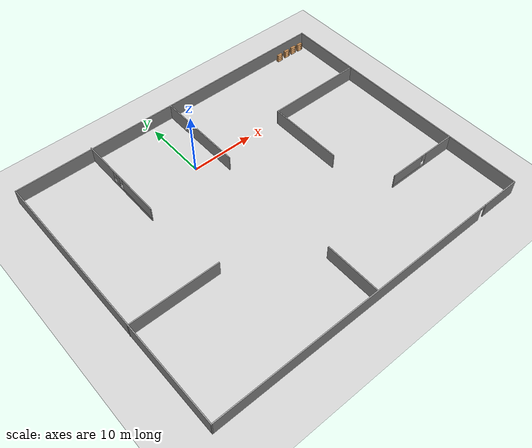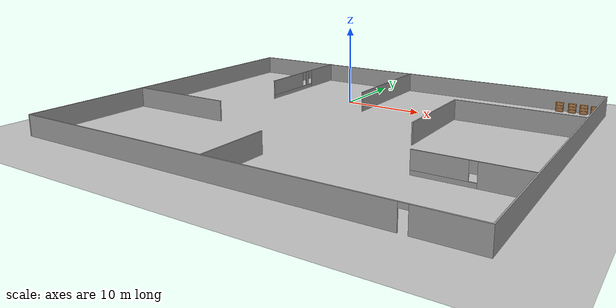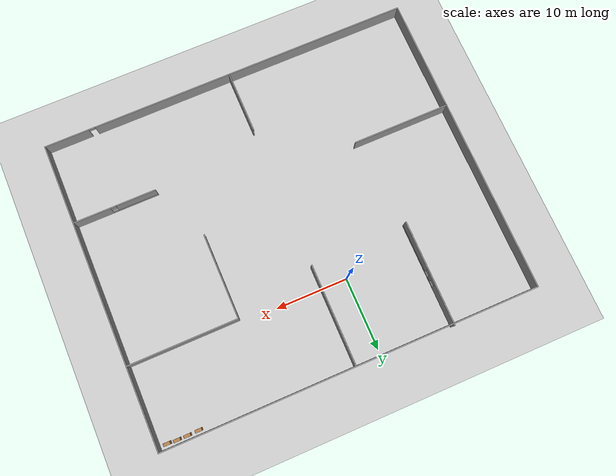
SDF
<sdf version="1.7">
 <world name="default">
  <light name="sun" type="directional">
   <pose>0 0 10 0 -0 0</pose>
   <diffuse>0.8 0.8 0.8 1</diffuse>
   <specular>0.2 0.2 0.2 1</specular>
   <attenuation>
    <range>1000</range>
    <constant>0.9</constant>
    <linear>0.01</linear>
    <quadratic>0.001</quadratic>
   </attenuation>
   <direction>-0.5 0.1 -0.9</direction>
   <spot><inner_angle>0</inner_angle><outer_angle>0</outer_angle><falloff>0</falloff></spot>
  </light>
  <model name="ground_plane">
   <static>1</static>
   <link name="link">
    <collision name="collision">
     <geometry><plane><normal>0 0 1</normal><size>100 100</size></plane></geometry>
     <surface><friction><ode><mu>100</mu><mu2>50</mu2></ode></friction></surface>
    </collision>
    <visual name="visual">
     <cast_shadows>0</cast_shadows>
     <geometry><plane><normal>0 0 1</normal><size>100 100</size></plane></geometry>
     <material>
      <script><uri>file://media/materials/scripts/gazebo.material</uri><name>Gazebo/Grey</name></script>
     </material>
    </visual>
   </link>
  </model>
  <gravity>0 0 -9.8</gravity>
  <magnetic_field>6e-06 2.3e-05 -4.2e-05</magnetic_field>
  <atmosphere type="adiabatic"/>
  <physics type="ode">
   <max_step_size>0.001</max_step_size>
   <real_time_factor>1</real_time_factor>
   <real_time_update_rate>1000</real_time_update_rate>
  </physics>
  <scene><ambient>0.4 0.4 0.4 1</ambient><background>0.7 0.7 0.7 1</background><shadows>1</shadows></scene>
  <audio><device>default</device></audio>
  <spherical_coordinates>
   <surface_model>EARTH_WGS84</surface_model>
   <latitude_deg>0</latitude_deg>
   <longitude_deg>0</longitude_deg>
   <elevation>0</elevation>
   <heading_deg>0</heading_deg>
  </spherical_coordinates>
  <model name="maze_wall">
   <pose>4.14739 -10.5175 0 0 -0 0</pose>
   <link name="Wall_10">
    <collision name="Wall_10_Collision">
     <geometry><box><size>43 0.15 2.5</size></box></geometry>
     <pose>0 0 1.25 0 -0 0</pose>
    </collision>
    <visual name="Wall_10_Visual">
     <pose>0 0 1.25 0 -0 0</pose>
     <geometry><box><size>43 0.15 2.5</size></box></geometry>
     <material>
      <script><uri>file://media/materials/scripts/gazebo.material</uri><name>Gazebo/Grey</name></script>
      <ambient>1 1 1 1</ambient>
     </material>
     <meta><layer>0</layer></meta>
    </visual>
    <pose>-26.1581 -0.11694 0 0 -0 1.5708</pose>
   </link>
   <link name="Wall_12">
    <pose>-14.1196 14.2419 0 0 -0 -1.5708</pose>
    <visual name="Wall_12_Visual_0">
     <pose>-4.51361 0 1.25 0 -0 0</pose>
     <geometry><box><size>5.72278 0.15 2.5</size></box></geometry>
     <material>
      <script><uri>file://media/materials/scripts/gazebo.material</uri><name>Gazebo/Grey</name></script>
      <ambient>1 1 1 1</ambient>
     </material>
     <meta><layer>0</layer></meta>
    </visual>
    <collision name="Wall_12_Collision_0">
     <geometry><box><size>5.72278 0.15 2.5</size></box></geometry>
     <pose>-4.51361 0 1.25 0 -0 0</pose>
    </collision>
    <visual name="Wall_12_Visual_1">
     <pose>2.86139 0 0.25 0 -0 0</pose>
     <geometry><box><size>9.02722 0.15 0.5</size></box></geometry>
     <material>
      <script><uri>file://media/materials/scripts/gazebo.material</uri><name>Gazebo/Grey</name></script>
      <ambient>1 1 1 1</ambient>
     </material>
     <meta><layer>0</layer></meta>
    </visual>
    <collision name="Wall_12_Collision_1">
     <geometry><box><size>9.02722 0.15 0.5</size></box></geometry>
     <pose>2.86139 0 0.25 0 -0 0</pose>
    </collision>
    <visual name="Wall_12_Visual_2">
     <pose>-0.540629 0 1.5 0 -0 0</pose>
     <geometry><box><size>0.623177 0.15 2</size></box></geometry>
     <material>
      <script><uri>file://media/materials/scripts/gazebo.material</uri><name>Gazebo/Grey</name></script>
      <ambient>1 1 1 1</ambient>
     </material>
     <meta><layer>0</layer></meta>
    </visual>
    <collision name="Wall_12_Collision_2">
     <geometry><box><size>0.623177 0.15 2</size></box></geometry>
     <pose>-0.540629 0 1.5 0 -0 0</pose>
    </collision>
    <visual name="Wall_12_Visual_3">
     <pose>3.97298 0 1.5 0 -0 0</pose>
     <geometry><box><size>6.80404 0.15 2</size></box></geometry>
     <material>
      <script><uri>file://media/materials/scripts/gazebo.material</uri><name>Gazebo/Grey</name></script>
      <ambient>1 1 1 1</ambient>
     </material>
     <meta><layer>0</layer></meta>
    </visual>
    <collision name="Wall_12_Collision_3">
     <geometry><box><size>6.80404 0.15 2</size></box></geometry>
     <pose>3.97298 0 1.5 0 -0 0</pose>
    </collision>
    <visual name="Wall_12_Visual_4">
     <pose>-1.25222 0 1.9 0 -0 0</pose>
     <geometry><box><size>0.8 0.15 1.2</size></box></geometry>
     <material>
      <script><uri>file://media/materials/scripts/gazebo.material</uri><name>Gazebo/Grey</name></script>
      <ambient>1 1 1 1</ambient>
     </material>
     <meta><layer>0</layer></meta>
    </visual>
    <collision name="Wall_12_Collision_4">
     <geometry><box><size>0.8 0.15 1.2</size></box></geometry>
     <pose>-1.25222 0 1.9 0 -0 0</pose>
    </collision>
    <visual name="Wall_12_Visual_5">
     <pose>0.17096 0 1.9 0 -0 0</pose>
     <geometry><box><size>0.8 0.15 1.2</size></box></geometry>
     <material>
      <script><uri>file://media/materials/scripts/gazebo.material</uri><name>Gazebo/Grey</name></script>
      <ambient>1 1 1 1</ambient>
     </material>
     <meta><layer>0</layer></meta>
    </visual>
    <collision name="Wall_12_Collision_5">
     <geometry><box><size>0.8 0.15 1.2</size></box></geometry>
     <pose>0.17096 0 1.9 0 -0 0</pose>
    </collision>
   </link>
   <link name="Wall_14">
    <collision name="Wall_14_Collision">
     <geometry><box><size>15.25 0.15 2.5</size></box></geometry>
     <pose>0 0 1.25 0 -0 0</pose>
    </collision>
    <visual name="Wall_14_Visual">
     <pose>0 0 1.25 0 -0 0</pose>
     <geometry><box><size>15.25 0.15 2.5</size></box></geometry>
     <material>
      <script><uri>file://media/materials/scripts/gazebo.material</uri><name>Gazebo/Grey</name></script>
      <ambient>1 1 1 1</ambient>
     </material>
     <meta><layer>0</layer></meta>
    </visual>
    <pose>18.4887 9.94377 0 0 -0 3.14159</pose>
   </link>
   <link name="Wall_15">
    <collision name="Wall_15_Collision">
     <geometry><box><size>12 0.15 2.5</size></box></geometry>
     <pose>0 0 1.25 0 -0 0</pose>
    </collision>
    <visual name="Wall_15_Visual">
     <pose>0 0 1.25 0 -0 0</pose>
     <geometry><box><size>12 0.15 2.5</size></box></geometry>
     <material>
      <script><uri>file://media/materials/scripts/gazebo.material</uri><name>Gazebo/Grey</name></script>
      <ambient>1 1 1 1</ambient>
     </material>
     <meta><layer>0</layer></meta>
    </visual>
    <pose>10.9387 4.01877 0 0 -0 -1.5708</pose>
   </link>
   <link name="Wall_17">
    <collision name="Wall_17_Collision">
     <geometry><box><size>13.75 0.15 2.5</size></box></geometry>
     <pose>0 0 1.25 0 -0 0</pose>
    </collision>
    <visual name="Wall_17_Visual">
     <pose>0 0 1.25 0 -0 0</pose>
     <geometry><box><size>13.75 0.15 2.5</size></box></geometry>
     <material>
      <script><uri>file://media/materials/scripts/gazebo.material</uri><name>Gazebo/Grey</name></script>
      <ambient>1 1 1 1</ambient>
     </material>
     <meta><layer>0</layer></meta>
    </visual>
    <pose>-19.3919 -5.71118 0 0 -0 0</pose>
   </link>
   <link name="Wall_19">
    <collision name="Wall_19_Collision">
     <geometry><box><size>8.75 0.15 2.5</size></box></geometry>
     <pose>0 0 1.25 0 -0 0</pose>
    </collision>
    <visual name="Wall_19_Visual">
     <pose>0 0 1.25 0 -0 0</pose>
     <geometry><box><size>8.75 0.15 2.5</size></box></geometry>
     <material>
      <script><uri>file://media/materials/scripts/gazebo.material</uri><name>Gazebo/Grey</name></script>
      <ambient>1 1 1 1</ambient>
     </material>
     <meta><layer>0</layer></meta>
    </visual>
    <pose>-0.574667 -17.2084 0 0 -0 1.5708</pose>
   </link>
   <link name="Wall_21">
    <pose>20.3637 -10.123 0 0 -0 3.14159</pose>
    <visual name="Wall_21_Visual_0">
     <pose>-3.20846 0 1.25 0 -0 0</pose>
     <geometry><box><size>5.08307 0.15 2.5</size></box></geometry>
     <material>
      <script><uri>file://media/materials/scripts/gazebo.material</uri><name>Gazebo/Grey</name></script>
      <ambient>1 1 1 1</ambient>
     </material>
     <meta><layer>0</layer></meta>
    </visual>
    <collision name="Wall_21_Collision_0">
     <geometry><box><size>5.08307 0.15 2.5</size></box></geometry>
     <pose>-3.20846 0 1.25 0 -0 0</pose>
    </collision>
    <visual name="Wall_21_Visual_1">
     <pose>2.54154 0 0.25 0 -0 0</pose>
     <geometry><box><size>6.41693 0.15 0.5</size></box></geometry>
     <material>
      <script><uri>file://media/materials/scripts/gazebo.material</uri><name>Gazebo/Grey</name></script>
      <ambient>1 1 1 1</ambient>
     </material>
     <meta><layer>0</layer></meta>
    </visual>
    <collision name="Wall_21_Collision_1">
     <geometry><box><size>6.41693 0.15 0.5</size></box></geometry>
     <pose>2.54154 0 0.25 0 -0 0</pose>
    </collision>
    <visual name="Wall_21_Visual_2">
     <pose>2.94154 0 1.5 0 -0 0</pose>
     <geometry><box><size>5.61693 0.15 2</size></box></geometry>
     <material>
      <script><uri>file://media/materials/scripts/gazebo.material</uri><name>Gazebo/Grey</name></script>
      <ambient>1 1 1 1</ambient>
     </material>
     <meta><layer>0</layer></meta>
    </visual>
    <collision name="Wall_21_Collision_2">
     <geometry><box><size>5.61693 0.15 2</size></box></geometry>
     <pose>2.94154 0 1.5 0 -0 0</pose>
    </collision>
    <visual name="Wall_21_Visual_3">
     <pose>-0.266928 0 1.9 0 -0 0</pose>
     <geometry><box><size>0.8 0.15 1.2</size></box></geometry>
     <material>
      <script><uri>file://media/materials/scripts/gazebo.material</uri><name>Gazebo/Grey</name></script>
      <ambient>1 1 1 1</ambient>
     </material>
     <meta><layer>0</layer></meta>
    </visual>
    <collision name="Wall_21_Collision_3">
     <geometry><box><size>0.8 0.15 1.2</size></box></geometry>
     <pose>-0.266928 0 1.9 0 -0 0</pose>
    </collision>
   </link>
   <link name="Wall_23">
    <collision name="Wall_23_Collision">
     <geometry><box><size>14 0.15 2.5</size></box></geometry>
     <pose>0 0 1.25 0 -0 0</pose>
    </collision>
    <visual name="Wall_23_Visual">
     <pose>0 0 1.25 0 -0 0</pose>
     <geometry><box><size>14 0.15 2.5</size></box></geometry>
     <material>
      <script><uri>file://media/materials/scripts/gazebo.material</uri><name>Gazebo/Grey</name></script>
      <ambient>1 1 1 1</ambient>
     </material>
     <meta><layer>0</layer></meta>
    </visual>
    <pose>-0.43235 14.2619 0 0 -0 -1.5708</pose>
   </link>
   <link name="Wall_7">
    <collision name="Wall_7_Collision">
     <geometry><box><size>52.5 0.15 2.5</size></box></geometry>
     <pose>0 0 1.25 0 -0 0</pose>
    </collision>
    <visual name="Wall_7_Visual">
     <pose>0 0 1.25 0 -0 0</pose>
     <geometry><box><size>52.5 0.15 2.5</size></box></geometry>
     <material>
      <script><uri>file://media/materials/scripts/gazebo.material</uri><name>Gazebo/Grey</name></script>
      <ambient>1 1 1 1</ambient>
     </material>
     <meta><layer>0</layer></meta>
    </visual>
    <pose>0.016854 21.3081 0 0 -0 0</pose>
   </link>
   <link name="Wall_8">
    <collision name="Wall_8_Collision">
     <geometry><box><size>43 0.15 2.5</size></box></geometry>
     <pose>0 0 1.25 0 -0 0</pose>
    </collision>
    <visual name="Wall_8_Visual">
     <pose>0 0 1.25 0 -0 0</pose>
     <geometry><box><size>43 0.15 2.5</size></box></geometry>
     <material>
      <script><uri>file://media/materials/scripts/gazebo.material</uri><name>Gazebo/Grey</name></script>
      <ambient>1 1 1 1</ambient>
     </material>
     <meta><layer>0</layer></meta>
    </visual>
    <pose>26.1919 -0.11694 0 0 -0 -1.5708</pose>
   </link>
   <link name="Wall_9">
    <pose>0.016854 -21.5419 0 0 -0 3.14159</pose>
    <visual name="Wall_9_Visual_0">
     <pose>-23.0876 0 1.25 0 -0 0</pose>
     <geometry><box><size>6.32472 0.15 2.5</size></box></geometry>
     <material>
      <script><uri>file://media/materials/scripts/gazebo.material</uri><name>Gazebo/Grey</name></script>
      <ambient>1 1 1 1</ambient>
     </material>
     <meta><layer>0</layer></meta>
    </visual>
    <collision name="Wall_9_Collision_0">
     <geometry><box><size>6.32472 0.15 2.5</size></box></geometry>
     <pose>-23.0876 0 1.25 0 -0 0</pose>
    </collision>
    <visual name="Wall_9_Visual_1">
     <pose>3.61236 0 1.25 0 -0 0</pose>
     <geometry><box><size>45.2753 0.15 2.5</size></box></geometry>
     <material>
      <script><uri>file://media/materials/scripts/gazebo.material</uri><name>Gazebo/Grey</name></script>
      <ambient>1 1 1 1</ambient>
     </material>
     <meta><layer>0</layer></meta>
    </visual>
    <collision name="Wall_9_Collision_1">
     <geometry><box><size>45.2753 0.15 2.5</size></box></geometry>
     <pose>3.61236 0 1.25 0 -0 0</pose>
    </collision>
    <visual name="Wall_9_Visual_2">
     <pose>-19.4753 0 2.25 0 -0 0</pose>
     <geometry><box><size>0.9 0.15 0.5</size></box></geometry>
     <material>
      <script><uri>file://media/materials/scripts/gazebo.material</uri><name>Gazebo/Grey</name></script>
      <ambient>1 1 1 1</ambient>
     </material>
     <meta><layer>0</layer></meta>
    </visual>
    <collision name="Wall_9_Collision_2">
     <geometry><box><size>0.9 0.15 0.5</size></box></geometry>
     <pose>-19.4753 0 2.25 0 -0 0</pose>
    </collision>
   </link>
   <static>1</static>
  </model>
  <model name="bookshelf">
   <static>1</static>
   <link name="link">
    <inertial><mass>1</mass></inertial>
    <collision name="back">
     <pose>0 0.005 0.6 0 -0 0</pose>
     <geometry><box><size>0.9 0.01 1.2</size></box></geometry>
    </collision>
    <visual name="visual1">
     <pose>0 0.005 0.6 0 -0 0</pose>
     <geometry><box><size>0.9 0.01 1.2</size></box></geometry>
     <material>
      <script><uri>file://media/materials/scripts/gazebo.material</uri><name>Gazebo/Wood</name></script>
     </material>
    </visual>
    <collision name="left_side">
     <pose>0.45 -0.195 0.6 0 -0 0</pose>
     <geometry><box><size>0.02 0.4 1.2</size></box></geometry>
    </collision>
    <visual name="visual2">
     <pose>0.45 -0.195 0.6 0 -0 0</pose>
     <geometry><box><size>0.02 0.4 1.2</size></box></geometry>
     <material>
      <script><uri>file://media/materials/scripts/gazebo.material</uri><name>Gazebo/Wood</name></script>
     </material>
    </visual>
    <collision name="right_side">
     <pose>-0.45 -0.195 0.6 0 -0 0</pose>
     <geometry><box><size>0.02 0.4 1.2</size></box></geometry>
    </collision>
    <visual name="visual3">
     <pose>-0.45 -0.195 0.6 0 -0 0</pose>
     <geometry><box><size>0.02 0.4 1.2</size></box></geometry>
     <material>
      <script><uri>file://media/materials/scripts/gazebo.material</uri><name>Gazebo/Wood</name></script>
     </material>
    </visual>
    <collision name="bottom">
     <pose>0 -0.195 0.03 0 -0 0</pose>
     <geometry><box><size>0.88 0.4 0.06</size></box></geometry>
    </collision>
    <visual name="visual4">
     <pose>0 -0.195 0.03 0 -0 0</pose>
     <geometry><box><size>0.88 0.4 0.06</size></box></geometry>
     <material>
      <script><uri>file://media/materials/scripts/gazebo.material</uri><name>Gazebo/Wood</name></script>
     </material>
    </visual>
    <collision name="top">
     <pose>0 -0.195 1.19 0 -0 0</pose>
     <geometry><box><size>0.88 0.4 0.02</size></box></geometry>
    </collision>
    <visual name="visual5">
     <pose>0 -0.195 1.19 0 -0 0</pose>
     <geometry><box><size>0.88 0.4 0.02</size></box></geometry>
     <material>
      <script><uri>file://media/materials/scripts/gazebo.material</uri><name>Gazebo/Wood</name></script>
     </material>
    </visual>
    <collision name="low_shelf">
     <pose>0 -0.195 0.43 0 -0 0</pose>
     <geometry><box><size>0.88 0.4 0.02</size></box></geometry>
    </collision>
    <visual name="visual6">
     <pose>0 -0.195 0.43 0 -0 0</pose>
     <geometry><box><size>0.88 0.4 0.02</size></box></geometry>
     <material>
      <script><uri>file://media/materials/scripts/gazebo.material</uri><name>Gazebo/Wood</name></script>
     </material>
    </visual>
    <collision name="high_shelf">
     <pose>0 -0.195 0.8 0 -0 0</pose>
     <geometry><box><size>0.88 0.4 0.02</size></box></geometry>
    </collision>
    <visual name="visual7">
     <pose>0 -0.195 0.8 0 -0 0</pose>
     <geometry><box><size>0.88 0.4 0.02</size></box></geometry>
     <material>
      <script><uri>file://media/materials/scripts/gazebo.material</uri><name>Gazebo/Wood</name></script>
     </material>
    </visual>
   </link>
   <pose>29.2407 10.3517 0 0 -0 0</pose>
  </model>
  <model name="bookshelf_0">
   <static>1</static>
   <link name="link">
    <inertial><mass>1</mass></inertial>
    <collision name="back">
     <pose>0 0.005 0.6 0 -0 0</pose>
     <geometry><box><size>0.9 0.01 1.2</size></box></geometry>
    </collision>
    <visual name="visual1">
     <pose>0 0.005 0.6 0 -0 0</pose>
     <geometry><box><size>0.9 0.01 1.2</size></box></geometry>
     <material>
      <script><uri>file://media/materials/scripts/gazebo.material</uri><name>Gazebo/Wood</name></script>
     </material>
    </visual>
    <collision name="left_side">
     <pose>0.45 -0.195 0.6 0 -0 0</pose>
     <geometry><box><size>0.02 0.4 1.2</size></box></geometry>
    </collision>
    <visual name="visual2">
     <pose>0.45 -0.195 0.6 0 -0 0</pose>
     <geometry><box><size>0.02 0.4 1.2</size></box></geometry>
     <material>
      <script><uri>file://media/materials/scripts/gazebo.material</uri><name>Gazebo/Wood</name></script>
     </material>
    </visual>
    <collision name="right_side">
     <pose>-0.45 -0.195 0.6 0 -0 0</pose>
     <geometry><box><size>0.02 0.4 1.2</size></box></geometry>
    </collision>
    <visual name="visual3">
     <pose>-0.45 -0.195 0.6 0 -0 0</pose>
     <geometry><box><size>0.02 0.4 1.2</size></box></geometry>
     <material>
      <script><uri>file://media/materials/scripts/gazebo.material</uri><name>Gazebo/Wood</name></script>
     </material>
    </visual>
    <collision name="bottom">
     <pose>0 -0.195 0.03 0 -0 0</pose>
     <geometry><box><size>0.88 0.4 0.06</size></box></geometry>
    </collision>
    <visual name="visual4">
     <pose>0 -0.195 0.03 0 -0 0</pose>
     <geometry><box><size>0.88 0.4 0.06</size></box></geometry>
     <material>
      <script><uri>file://media/materials/scripts/gazebo.material</uri><name>Gazebo/Wood</name></script>
     </material>
    </visual>
    <collision name="top">
     <pose>0 -0.195 1.19 0 -0 0</pose>
     <geometry><box><size>0.88 0.4 0.02</size></box></geometry>
    </collision>
    <visual name="visual5">
     <pose>0 -0.195 1.19 0 -0 0</pose>
     <geometry><box><size>0.88 0.4 0.02</size></box></geometry>
     <material>
      <script><uri>file://media/materials/scripts/gazebo.material</uri><name>Gazebo/Wood</name></script>
     </material>
    </visual>
    <collision name="low_shelf">
     <pose>0 -0.195 0.43 0 -0 0</pose>
     <geometry><box><size>0.88 0.4 0.02</size></box></geometry>
    </collision>
    <visual name="visual6">
     <pose>0 -0.195 0.43 0 -0 0</pose>
     <geometry><box><size>0.88 0.4 0.02</size></box></geometry>
     <material>
      <script><uri>file://media/materials/scripts/gazebo.material</uri><name>Gazebo/Wood</name></script>
     </material>
    </visual>
    <collision name="high_shelf">
     <pose>0 -0.195 0.8 0 -0 0</pose>
     <geometry><box><size>0.88 0.4 0.02</size></box></geometry>
    </collision>
    <visual name="visual7">
     <pose>0 -0.195 0.8 0 -0 0</pose>
     <geometry><box><size>0.88 0.4 0.02</size></box></geometry>
     <material>
      <script><uri>file://media/materials/scripts/gazebo.material</uri><name>Gazebo/Wood</name></script>
     </material>
    </visual>
   </link>
   <pose>27.9232 10.4359 0 0 -0 0</pose>
  </model>
  <model name="bookshelf_1">
   <static>1</static>
   <link name="link">
    <inertial><mass>1</mass></inertial>
    <collision name="back">
     <pose>0 0.005 0.6 0 -0 0</pose>
     <geometry><box><size>0.9 0.01 1.2</size></box></geometry>
    </collision>
    <visual name="visual1">
     <pose>0 0.005 0.6 0 -0 0</pose>
     <geometry><box><size>0.9 0.01 1.2</size></box></geometry>
     <material>
      <script><uri>file://media/materials/scripts/gazebo.material</uri><name>Gazebo/Wood</name></script>
     </material>
    </visual>
    <collision name="left_side">
     <pose>0.45 -0.195 0.6 0 -0 0</pose>
     <geometry><box><size>0.02 0.4 1.2</size></box></geometry>
    </collision>
    <visual name="visual2">
     <pose>0.45 -0.195 0.6 0 -0 0</pose>
     <geometry><box><size>0.02 0.4 1.2</size></box></geometry>
     <material>
      <script><uri>file://media/materials/scripts/gazebo.material</uri><name>Gazebo/Wood</name></script>
     </material>
    </visual>
    <collision name="right_side">
     <pose>-0.45 -0.195 0.6 0 -0 0</pose>
     <geometry><box><size>0.02 0.4 1.2</size></box></geometry>
    </collision>
    <visual name="visual3">
     <pose>-0.45 -0.195 0.6 0 -0 0</pose>
     <geometry><box><size>0.02 0.4 1.2</size></box></geometry>
     <material>
      <script><uri>file://media/materials/scripts/gazebo.material</uri><name>Gazebo/Wood</name></script>
     </material>
    </visual>
    <collision name="bottom">
     <pose>0 -0.195 0.03 0 -0 0</pose>
     <geometry><box><size>0.88 0.4 0.06</size></box></geometry>
    </collision>
    <visual name="visual4">
     <pose>0 -0.195 0.03 0 -0 0</pose>
     <geometry><box><size>0.88 0.4 0.06</size></box></geometry>
     <material>
      <script><uri>file://media/materials/scripts/gazebo.material</uri><name>Gazebo/Wood</name></script>
     </material>
    </visual>
    <collision name="top">
     <pose>0 -0.195 1.19 0 -0 0</pose>
     <geometry><box><size>0.88 0.4 0.02</size></box></geometry>
    </collision>
    <visual name="visual5">
     <pose>0 -0.195 1.19 0 -0 0</pose>
     <geometry><box><size>0.88 0.4 0.02</size></box></geometry>
     <material>
      <script><uri>file://media/materials/scripts/gazebo.material</uri><name>Gazebo/Wood</name></script>
     </material>
    </visual>
    <collision name="low_shelf">
     <pose>0 -0.195 0.43 0 -0 0</pose>
     <geometry><box><size>0.88 0.4 0.02</size></box></geometry>
    </collision>
    <visual name="visual6">
     <pose>0 -0.195 0.43 0 -0 0</pose>
     <geometry><box><size>0.88 0.4 0.02</size></box></geometry>
     <material>
      <script><uri>file://media/materials/scripts/gazebo.material</uri><name>Gazebo/Wood</name></script>
     </material>
    </visual>
    <collision name="high_shelf">
     <pose>0 -0.195 0.8 0 -0 0</pose>
     <geometry><box><size>0.88 0.4 0.02</size></box></geometry>
    </collision>
    <visual name="visual7">
     <pose>0 -0.195 0.8 0 -0 0</pose>
     <geometry><box><size>0.88 0.4 0.02</size></box></geometry>
     <material>
      <script><uri>file://media/materials/scripts/gazebo.material</uri><name>Gazebo/Wood</name></script>
     </material>
    </visual>
   </link>
   <pose>26.5377 10.4462 0 0 -0 0</pose>
  </model>
  <model name="bookshelf_2">
   <static>1</static>
   <link name="link">
    <inertial><mass>1</mass></inertial>
    <collision name="back">
     <pose>0 0.005 0.6 0 -0 0</pose>
     <geometry><box><size>0.9 0.01 1.2</size></box></geometry>
    </collision>
    <visual name="visual1">
     <pose>0 0.005 0.6 0 -0 0</pose>
     <geometry><box><size>0.9 0.01 1.2</size></box></geometry>
     <material>
      <script><uri>file://media/materials/scripts/gazebo.material</uri><name>Gazebo/Wood</name></script>
     </material>
    </visual>
    <collision name="left_side">
     <pose>0.45 -0.195 0.6 0 -0 0</pose>
     <geometry><box><size>0.02 0.4 1.2</size></box></geometry>
    </collision>
    <visual name="visual2">
     <pose>0.45 -0.195 0.6 0 -0 0</pose>
     <geometry><box><size>0.02 0.4 1.2</size></box></geometry>
     <material>
      <script><uri>file://media/materials/scripts/gazebo.material</uri><name>Gazebo/Wood</name></script>
     </material>
    </visual>
    <collision name="right_side">
     <pose>-0.45 -0.195 0.6 0 -0 0</pose>
     <geometry><box><size>0.02 0.4 1.2</size></box></geometry>
    </collision>
    <visual name="visual3">
     <pose>-0.45 -0.195 0.6 0 -0 0</pose>
     <geometry><box><size>0.02 0.4 1.2</size></box></geometry>
     <material>
      <script><uri>file://media/materials/scripts/gazebo.material</uri><name>Gazebo/Wood</name></script>
     </material>
    </visual>
    <collision name="bottom">
     <pose>0 -0.195 0.03 0 -0 0</pose>
     <geometry><box><size>0.88 0.4 0.06</size></box></geometry>
    </collision>
    <visual name="visual4">
     <pose>0 -0.195 0.03 0 -0 0</pose>
     <geometry><box><size>0.88 0.4 0.06</size></box></geometry>
     <material>
      <script><uri>file://media/materials/scripts/gazebo.material</uri><name>Gazebo/Wood</name></script>
     </material>
    </visual>
    <collision name="top">
     <pose>0 -0.195 1.19 0 -0 0</pose>
     <geometry><box><size>0.88 0.4 0.02</size></box></geometry>
    </collision>
    <visual name="visual5">
     <pose>0 -0.195 1.19 0 -0 0</pose>
     <geometry><box><size>0.88 0.4 0.02</size></box></geometry>
     <material>
      <script><uri>file://media/materials/scripts/gazebo.material</uri><name>Gazebo/Wood</name></script>
     </material>
    </visual>
    <collision name="low_shelf">
     <pose>0 -0.195 0.43 0 -0 0</pose>
     <geometry><box><size>0.88 0.4 0.02</size></box></geometry>
    </collision>
    <visual name="visual6">
     <pose>0 -0.195 0.43 0 -0 0</pose>
     <geometry><box><size>0.88 0.4 0.02</size></box></geometry>
     <material>
      <script><uri>file://media/materials/scripts/gazebo.material</uri><name>Gazebo/Wood</name></script>
     </material>
    </visual>
    <collision name="high_shelf">
     <pose>0 -0.195 0.8 0 -0 0</pose>
     <geometry><box><size>0.88 0.4 0.02</size></box></geometry>
    </collision>
    <visual name="visual7">
     <pose>0 -0.195 0.8 0 -0 0</pose>
     <geometry><box><size>0.88 0.4 0.02</size></box></geometry>
     <material>
      <script><uri>file://media/materials/scripts/gazebo.material</uri><name>Gazebo/Wood</name></script>
     </material>
    </visual>
   </link>
   <pose>25.0118 10.4048 0 0 -0 0</pose>
  </model>
 </world>
</sdf>
